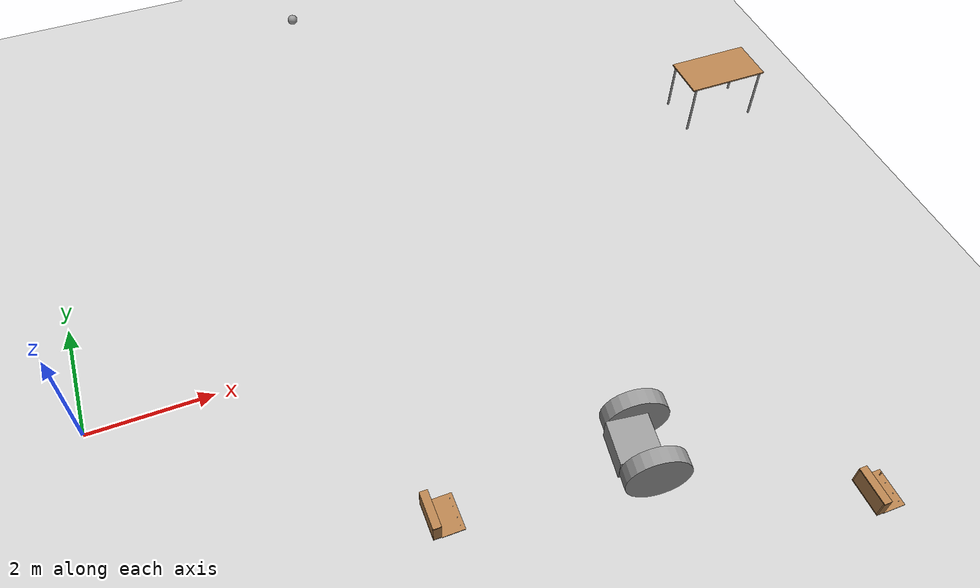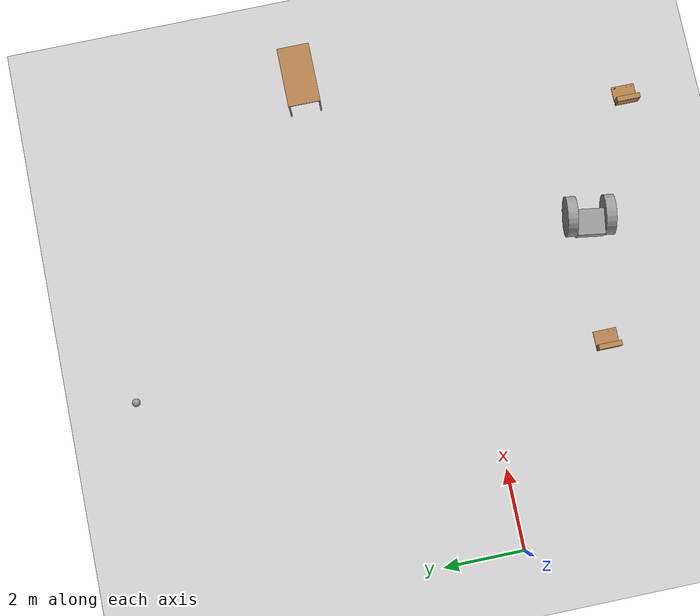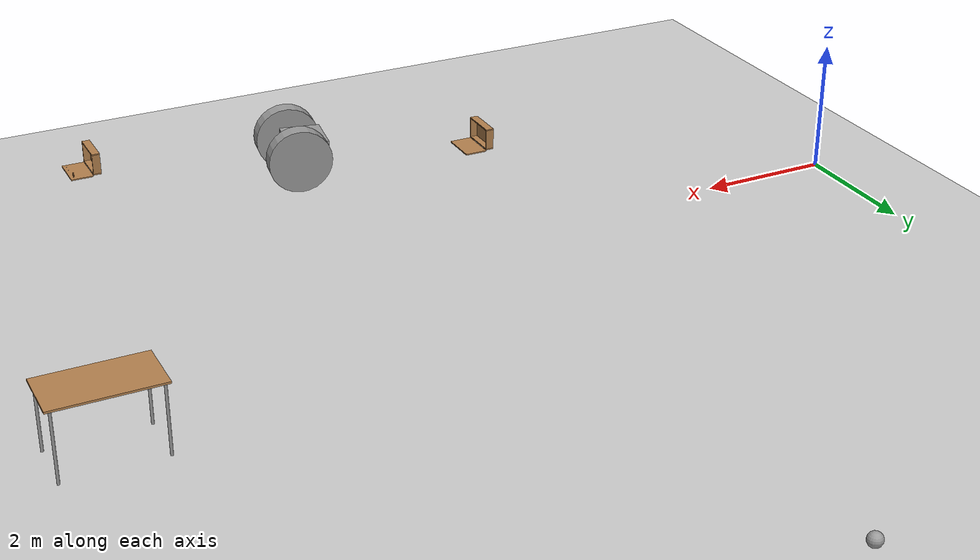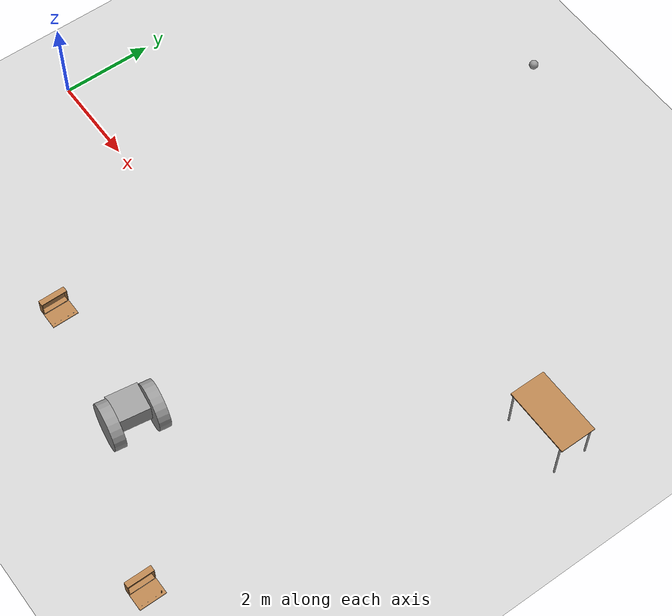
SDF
<sdf version="1.7">
 <world name="default">
  <model name="ground_plane">
   <static>1</static>
   <link name="link">
    <collision name="collision">
     <geometry><plane><normal>0 0 1</normal><size>100 100</size></plane></geometry>
     <surface>
      <contact><collide_bitmask>65535</collide_bitmask></contact>
      <friction><ode><mu>100</mu><mu2>50</mu2></ode></friction>
     </surface>
    </collision>
    <visual name="visual">
     <cast_shadows>0</cast_shadows>
     <geometry><plane><normal>0 0 1</normal><size>100 100</size></plane></geometry>
     <material>
      <script><uri>file://media/materials/scripts/gazebo.material</uri><name>Gazebo/Grey</name></script>
     </material>
    </visual>
   </link>
  </model>
  <model name="table">
   <static>1</static>
   <link name="link">
    <collision name="surface">
     <pose>0 0 1 0 -0 0</pose>
     <geometry><box><size>1.5 0.8 0.03</size></box></geometry>
     <surface><friction><ode><mu>0.6</mu><mu2>0.6</mu2></ode></friction></surface>
    </collision>
    <visual name="visual1">
     <pose>0 0 1 0 -0 0</pose>
     <geometry><box><size>1.5 0.8 0.03</size></box></geometry>
     <material>
      <script><uri>file://media/materials/scripts/gazebo.material</uri><name>Gazebo/Wood</name></script>
     </material>
    </visual>
    <collision name="front_left_leg">
     <pose>0.68 0.38 0.5 0 -0 0</pose>
     <geometry><cylinder><radius>0.02</radius><length>1</length></cylinder></geometry>
    </collision>
    <visual name="front_left_leg">
     <pose>0.68 0.38 0.5 0 -0 0</pose>
     <geometry><cylinder><radius>0.02</radius><length>1</length></cylinder></geometry>
     <material>
      <script><uri>file://media/materials/scripts/gazebo.material</uri><name>Gazebo/Grey</name></script>
     </material>
    </visual>
    <collision name="front_right_leg">
     <pose>0.68 -0.38 0.5 0 -0 0</pose>
     <geometry><cylinder><radius>0.02</radius><length>1</length></cylinder></geometry>
    </collision>
    <visual name="front_right_leg">
     <pose>0.68 -0.38 0.5 0 -0 0</pose>
     <geometry><cylinder><radius>0.02</radius><length>1</length></cylinder></geometry>
     <material>
      <script><uri>file://media/materials/scripts/gazebo.material</uri><name>Gazebo/Grey</name></script>
     </material>
    </visual>
    <collision name="back_right_leg">
     <pose>-0.68 -0.38 0.5 0 -0 0</pose>
     <geometry><cylinder><radius>0.02</radius><length>1</length></cylinder></geometry>
    </collision>
    <visual name="back_right_leg">
     <pose>-0.68 -0.38 0.5 0 -0 0</pose>
     <geometry><cylinder><radius>0.02</radius><length>1</length></cylinder></geometry>
     <material>
      <script><uri>file://media/materials/scripts/gazebo.material</uri><name>Gazebo/Grey</name></script>
     </material>
    </visual>
    <collision name="back_left_leg">
     <pose>-0.68 0.38 0.5 0 -0 0</pose>
     <geometry><cylinder><radius>0.02</radius><length>1</length></cylinder></geometry>
    </collision>
    <visual name="back_left_leg">
     <pose>-0.68 0.38 0.5 0 -0 0</pose>
     <geometry><cylinder><radius>0.02</radius><length>1</length></cylinder></geometry>
     <material>
      <script><uri>file://media/materials/scripts/gazebo.material</uri><name>Gazebo/Grey</name></script>
     </material>
    </visual>
   </link>
   <pose>12.4463 3.02945 0 0 -0 0</pose>
  </model>
  <model name="wooden_case">
   <link name="base">
    <pose>0 0 0.024 0 -0 0</pose>
    <inertial>
     <pose>-0.022184 0 0.171592 0 -0 0</pose>
     <mass>3.96264</mass>
     <inertia>
      <ixx>0.213536</ixx>
      <ixy>0</ixy>
      <ixz>0.000779377</ixz>
      <iyy>0.0708943</iyy>
      <iyz>0</iyz>
      <izz>0.154604</izz>
     </inertia>
    </inertial>
    <collision name="collision_back">
     <pose>-0.053975 0 0.1778 0 -0 0</pose>
     <geometry><box><size>0.01905 0.5461 0.3175</size></box></geometry>
     <surface>
      <contact>
       <poissons_ratio>0.347</poissons_ratio>
       <elastic_modulus>8.8e+09</elastic_modulus>
       <ode><kp>100000</kp><kd>100</kd><max_vel>100</max_vel><min_depth>0.001</min_depth></ode>
      </contact>
      <friction>
       <torsional>
        <coefficient>1</coefficient>
        <use_patch_radius>0</use_patch_radius>
        <surface_radius>0.01</surface_radius>
       </torsional>
      </friction>
     </surface>
    </collision>
    <visual name="visual_back">
     <pose>-0.053975 0 0.1778 0 -0 0</pose>
     <geometry><box><size>0.01905 0.5461 0.3175</size></box></geometry>
     <material>
      <script><uri>file://media/materials/scripts/gazebo.material</uri><name>Gazebo/Wood</name></script>
     </material>
    </visual>
    <collision name="collision_bottom">
     <pose>0 0 0.009525 0 -0 0</pose>
     <geometry><box><size>0.127 0.5842 0.01905</size></box></geometry>
     <surface>
      <contact>
       <poissons_ratio>0.347</poissons_ratio>
       <elastic_modulus>8.8e+09</elastic_modulus>
       <ode><kp>100000</kp><kd>100</kd><max_vel>100</max_vel><min_depth>0.001</min_depth></ode>
      </contact>
      <friction>
       <torsional>
        <coefficient>1</coefficient>
        <use_patch_radius>0</use_patch_radius>
        <surface_radius>0.01</surface_radius>
       </torsional>
      </friction>
     </surface>
    </collision>
    <visual name="visual_bottom">
     <pose>0 0 0.009525 0 -0 0</pose>
     <geometry><box><size>0.127 0.5842 0.01905</size></box></geometry>
     <material>
      <script><uri>file://media/materials/scripts/gazebo.material</uri><name>Gazebo/Wood</name></script>
     </material>
    </visual>
    <collision name="collision_top">
     <pose>0 0 0.346075 0 -0 0</pose>
     <geometry><box><size>0.127 0.5842 0.01905</size></box></geometry>
     <surface>
      <contact>
       <poissons_ratio>0.347</poissons_ratio>
       <elastic_modulus>8.8e+09</elastic_modulus>
       <ode><kp>100000</kp><kd>100</kd><max_vel>100</max_vel><min_depth>0.001</min_depth></ode>
      </contact>
      <friction>
       <torsional>
        <coefficient>1</coefficient>
        <use_patch_radius>0</use_patch_radius>
        <surface_radius>0.01</surface_radius>
       </torsional>
      </friction>
     </surface>
    </collision>
    <visual name="visual_top">
     <pose>0 0 0.346075 0 -0 0</pose>
     <geometry><box><size>0.127 0.5842 0.01905</size></box></geometry>
     <material>
      <script><uri>file://media/materials/scripts/gazebo.material</uri><name>Gazebo/Wood</name></script>
     </material>
    </visual>
    <collision name="collision_left">
     <pose>0 -0.282575 0.1778 0 -0 0</pose>
     <geometry><box><size>0.127 0.01905 0.3175</size></box></geometry>
     <surface>
      <contact>
       <poissons_ratio>0.347</poissons_ratio>
       <elastic_modulus>8.8e+09</elastic_modulus>
       <ode><kp>100000</kp><kd>100</kd><max_vel>100</max_vel><min_depth>0.001</min_depth></ode>
      </contact>
      <friction>
       <torsional>
        <coefficient>1</coefficient>
        <use_patch_radius>0</use_patch_radius>
        <surface_radius>0.01</surface_radius>
       </torsional>
      </friction>
     </surface>
    </collision>
    <visual name="visual_left">
     <pose>0 -0.282575 0.1778 0 -0 0</pose>
     <geometry><box><size>0.127 0.01905 0.3175</size></box></geometry>
     <material>
      <script><uri>file://media/materials/scripts/gazebo.material</uri><name>Gazebo/Wood</name></script>
     </material>
    </visual>
    <collision name="collision_right">
     <pose>0 0.282575 0.1778 0 -0 0</pose>
     <geometry><box><size>0.127 0.01905 0.3175</size></box></geometry>
     <surface>
      <contact>
       <poissons_ratio>0.347</poissons_ratio>
       <elastic_modulus>8.8e+09</elastic_modulus>
       <ode><kp>100000</kp><kd>100</kd><max_vel>100</max_vel><min_depth>0.001</min_depth></ode>
      </contact>
      <friction>
       <torsional>
        <coefficient>1</coefficient>
        <use_patch_radius>0</use_patch_radius>
        <surface_radius>0.01</surface_radius>
       </torsional>
      </friction>
     </surface>
    </collision>
    <visual name="visual_right">
     <pose>0 0.282575 0.1778 0 -0 0</pose>
     <geometry><box><size>0.127 0.01905 0.3175</size></box></geometry>
     <material>
      <script><uri>file://media/materials/scripts/gazebo.material</uri><name>Gazebo/Wood</name></script>
     </material>
    </visual>
    <collision name="collision_block_left">
     <pose>0.0095 -0.2151 -0.012 0 -0 0</pose>
     <geometry><box><size>0.108 0.05 0.024</size></box></geometry>
     <surface>
      <contact>
       <poissons_ratio>0.347</poissons_ratio>
       <elastic_modulus>8.8e+09</elastic_modulus>
       <ode><kp>100000</kp><kd>100</kd><max_vel>100</max_vel><min_depth>0.001</min_depth></ode>
      </contact>
      <friction>
       <torsional>
        <coefficient>1</coefficient>
        <use_patch_radius>0</use_patch_radius>
        <surface_radius>0.01</surface_radius>
       </torsional>
      </friction>
     </surface>
    </collision>
    <visual name="visual_block_left">
     <pose>0.0095 -0.2151 -0.012 0 -0 0</pose>
     <geometry><box><size>0.108 0.05 0.024</size></box></geometry>
     <material>
      <script><uri>file://media/materials/scripts/gazebo.material</uri><name>Gazebo/Wood</name></script>
     </material>
    </visual>
    <collision name="collision_block_right">
     <pose>0.0095 0.2151 -0.012 0 -0 0</pose>
     <geometry><box><size>0.108 0.05 0.024</size></box></geometry>
     <surface>
      <contact>
       <poissons_ratio>0.347</poissons_ratio>
       <elastic_modulus>8.8e+09</elastic_modulus>
       <ode><kp>100000</kp><kd>100</kd><max_vel>100</max_vel><min_depth>0.001</min_depth></ode>
      </contact>
      <friction>
       <torsional>
        <coefficient>1</coefficient>
        <use_patch_radius>0</use_patch_radius>
        <surface_radius>0.01</surface_radius>
       </torsional>
      </friction>
     </surface>
    </collision>
    <visual name="visual_block_right">
     <pose>0.0095 0.2151 -0.012 0 -0 0</pose>
     <geometry><box><size>0.108 0.05 0.024</size></box></geometry>
     <material>
      <script><uri>file://media/materials/scripts/gazebo.material</uri><name>Gazebo/Wood</name></script>
     </material>
    </visual>
   </link>
   <link name="lid">
    <pose>0.243775 0 0.009525 0 -0 0</pose>
    <inertial>
     <mass>1.97874</mass>
     <inertia>
      <ixx>0.0563367</ixx>
      <ixy>0</ixy>
      <ixz>0</ixz>
      <iyy>0.020911</iyy>
      <iyz>0</iyz>
      <izz>0.0771281</izz>
     </inertia>
    </inertial>
    <collision name="collision">
     <geometry><box><size>0.3556 0.5842 0.01905</size></box></geometry>
     <surface>
      <contact>
       <poissons_ratio>0.347</poissons_ratio>
       <elastic_modulus>8.8e+09</elastic_modulus>
       <ode><kp>100000</kp><kd>100</kd><max_vel>100</max_vel><min_depth>0.001</min_depth></ode>
      </contact>
      <friction>
       <torsional>
        <coefficient>1</coefficient>
        <use_patch_radius>0</use_patch_radius>
        <surface_radius>0.01</surface_radius>
       </torsional>
      </friction>
     </surface>
    </collision>
    <visual name="visual">
     <geometry><box><size>0.3556 0.5842 0.01905</size></box></geometry>
     <material>
      <script><uri>file://media/materials/scripts/gazebo.material</uri><name>Gazebo/Wood</name></script>
     </material>
    </visual>
    <visual name="tee_nut_1">
     <pose>0.122 -0.216 0 0 -0 0</pose>
     <geometry><cylinder><radius>0.00635</radius><length>0.0192405</length></cylinder></geometry>
     <material>
      <script><uri>file://media/materials/scripts/gazebo.material</uri><name>Gazebo/Grey</name></script>
     </material>
    </visual>
    <visual name="tee_nut_2">
     <pose>0.122 -0.088 0 0 -0 0</pose>
     <geometry><cylinder><radius>0.00635</radius><length>0.0192405</length></cylinder></geometry>
     <material>
      <script><uri>file://media/materials/scripts/gazebo.material</uri><name>Gazebo/Grey</name></script>
     </material>
    </visual>
    <visual name="tee_nut_3">
     <pose>0.122 0.088 0 0 -0 0</pose>
     <geometry><cylinder><radius>0.00635</radius><length>0.0192405</length></cylinder></geometry>
     <material>
      <script><uri>file://media/materials/scripts/gazebo.material</uri><name>Gazebo/Grey</name></script>
     </material>
    </visual>
    <visual name="tee_nut_4">
     <pose>0.122 0.216 0 0 -0 0</pose>
     <geometry><cylinder><radius>0.00635</radius><length>0.0192405</length></cylinder></geometry>
     <material>
      <script><uri>file://media/materials/scripts/gazebo.material</uri><name>Gazebo/Grey</name></script>
     </material>
    </visual>
   </link>
   <joint name="lid_hinge" type="revolute">
    <pose>-0.1778 0 0.01905 0 -0 0</pose>
    <parent>base</parent>
    <child>lid</child>
    <axis>
     <xyz>0 1 0</xyz>
     <limit><upper>0.523599</upper><lower>-1.5708</lower></limit>
     <dynamics><spring_reference>0</spring_reference><spring_stiffness>0</spring_stiffness></dynamics>
    </axis>
   </joint>
   <pose>4.4225 -3.09743 -0.001057 0 -0.000425 -1e-06</pose>
  </model>
  <model name="wooden_case_wooden_peg">
   <link name="wooden_case::base">
    <pose>0 0 0.024 0 -0 0</pose>
    <inertial>
     <pose>-0.022184 0 0.171592 0 -0 0</pose>
     <mass>3.96264</mass>
     <inertia>
      <ixx>0.213536</ixx>
      <ixy>0</ixy>
      <ixz>0.000779377</ixz>
      <iyy>0.0708943</iyy>
      <iyz>0</iyz>
      <izz>0.154604</izz>
     </inertia>
    </inertial>
    <collision name="collision_back">
     <pose>-0.053975 0 0.1778 0 -0 0</pose>
     <geometry><box><size>0.01905 0.5461 0.3175</size></box></geometry>
     <surface>
      <contact>
       <poissons_ratio>0.347</poissons_ratio>
       <elastic_modulus>8.8e+09</elastic_modulus>
       <ode><kp>100000</kp><kd>100</kd><max_vel>100</max_vel><min_depth>0.001</min_depth></ode>
      </contact>
      <friction>
       <torsional>
        <coefficient>1</coefficient>
        <use_patch_radius>0</use_patch_radius>
        <surface_radius>0.01</surface_radius>
       </torsional>
      </friction>
     </surface>
    </collision>
    <visual name="visual_back">
     <pose>-0.053975 0 0.1778 0 -0 0</pose>
     <geometry><box><size>0.01905 0.5461 0.3175</size></box></geometry>
     <material>
      <script><uri>file://media/materials/scripts/gazebo.material</uri><name>Gazebo/Wood</name></script>
     </material>
    </visual>
    <collision name="collision_bottom">
     <pose>0 0 0.009525 0 -0 0</pose>
     <geometry><box><size>0.127 0.5842 0.01905</size></box></geometry>
     <surface>
      <contact>
       <poissons_ratio>0.347</poissons_ratio>
       <elastic_modulus>8.8e+09</elastic_modulus>
       <ode><kp>100000</kp><kd>100</kd><max_vel>100</max_vel><min_depth>0.001</min_depth></ode>
      </contact>
      <friction>
       <torsional>
        <coefficient>1</coefficient>
        <use_patch_radius>0</use_patch_radius>
        <surface_radius>0.01</surface_radius>
       </torsional>
      </friction>
     </surface>
    </collision>
    <visual name="visual_bottom">
     <pose>0 0 0.009525 0 -0 0</pose>
     <geometry><box><size>0.127 0.5842 0.01905</size></box></geometry>
     <material>
      <script><uri>file://media/materials/scripts/gazebo.material</uri><name>Gazebo/Wood</name></script>
     </material>
    </visual>
    <collision name="collision_top">
     <pose>0 0 0.346075 0 -0 0</pose>
     <geometry><box><size>0.127 0.5842 0.01905</size></box></geometry>
     <surface>
      <contact>
       <poissons_ratio>0.347</poissons_ratio>
       <elastic_modulus>8.8e+09</elastic_modulus>
       <ode><kp>100000</kp><kd>100</kd><max_vel>100</max_vel><min_depth>0.001</min_depth></ode>
      </contact>
      <friction>
       <torsional>
        <coefficient>1</coefficient>
        <use_patch_radius>0</use_patch_radius>
        <surface_radius>0.01</surface_radius>
       </torsional>
      </friction>
     </surface>
    </collision>
    <visual name="visual_top">
     <pose>0 0 0.346075 0 -0 0</pose>
     <geometry><box><size>0.127 0.5842 0.01905</size></box></geometry>
     <material>
      <script><uri>file://media/materials/scripts/gazebo.material</uri><name>Gazebo/Wood</name></script>
     </material>
    </visual>
    <collision name="collision_left">
     <pose>0 -0.282575 0.1778 0 -0 0</pose>
     <geometry><box><size>0.127 0.01905 0.3175</size></box></geometry>
     <surface>
      <contact>
       <poissons_ratio>0.347</poissons_ratio>
       <elastic_modulus>8.8e+09</elastic_modulus>
       <ode><kp>100000</kp><kd>100</kd><max_vel>100</max_vel><min_depth>0.001</min_depth></ode>
      </contact>
      <friction>
       <torsional>
        <coefficient>1</coefficient>
        <use_patch_radius>0</use_patch_radius>
        <surface_radius>0.01</surface_radius>
       </torsional>
      </friction>
     </surface>
    </collision>
    <visual name="visual_left">
     <pose>0 -0.282575 0.1778 0 -0 0</pose>
     <geometry><box><size>0.127 0.01905 0.3175</size></box></geometry>
     <material>
      <script><uri>file://media/materials/scripts/gazebo.material</uri><name>Gazebo/Wood</name></script>
     </material>
    </visual>
    <collision name="collision_right">
     <pose>0 0.282575 0.1778 0 -0 0</pose>
     <geometry><box><size>0.127 0.01905 0.3175</size></box></geometry>
     <surface>
      <contact>
       <poissons_ratio>0.347</poissons_ratio>
       <elastic_modulus>8.8e+09</elastic_modulus>
       <ode><kp>100000</kp><kd>100</kd><max_vel>100</max_vel><min_depth>0.001</min_depth></ode>
      </contact>
      <friction>
       <torsional>
        <coefficient>1</coefficient>
        <use_patch_radius>0</use_patch_radius>
        <surface_radius>0.01</surface_radius>
       </torsional>
      </friction>
     </surface>
    </collision>
    <visual name="visual_right">
     <pose>0 0.282575 0.1778 0 -0 0</pose>
     <geometry><box><size>0.127 0.01905 0.3175</size></box></geometry>
     <material>
      <script><uri>file://media/materials/scripts/gazebo.material</uri><name>Gazebo/Wood</name></script>
     </material>
    </visual>
    <collision name="collision_block_left">
     <pose>0.0095 -0.2151 -0.012 0 -0 0</pose>
     <geometry><box><size>0.108 0.05 0.024</size></box></geometry>
     <surface>
      <contact>
       <poissons_ratio>0.347</poissons_ratio>
       <elastic_modulus>8.8e+09</elastic_modulus>
       <ode><kp>100000</kp><kd>100</kd><max_vel>100</max_vel><min_depth>0.001</min_depth></ode>
      </contact>
      <friction>
       <torsional>
        <coefficient>1</coefficient>
        <use_patch_radius>0</use_patch_radius>
        <surface_radius>0.01</surface_radius>
       </torsional>
      </friction>
     </surface>
    </collision>
    <visual name="visual_block_left">
     <pose>0.0095 -0.2151 -0.012 0 -0 0</pose>
     <geometry><box><size>0.108 0.05 0.024</size></box></geometry>
     <material>
      <script><uri>file://media/materials/scripts/gazebo.material</uri><name>Gazebo/Wood</name></script>
     </material>
    </visual>
    <collision name="collision_block_right">
     <pose>0.0095 0.2151 -0.012 0 -0 0</pose>
     <geometry><box><size>0.108 0.05 0.024</size></box></geometry>
     <surface>
      <contact>
       <poissons_ratio>0.347</poissons_ratio>
       <elastic_modulus>8.8e+09</elastic_modulus>
       <ode><kp>100000</kp><kd>100</kd><max_vel>100</max_vel><min_depth>0.001</min_depth></ode>
      </contact>
      <friction>
       <torsional>
        <coefficient>1</coefficient>
        <use_patch_radius>0</use_patch_radius>
        <surface_radius>0.01</surface_radius>
       </torsional>
      </friction>
     </surface>
    </collision>
    <visual name="visual_block_right">
     <pose>0.0095 0.2151 -0.012 0 -0 0</pose>
     <geometry><box><size>0.108 0.05 0.024</size></box></geometry>
     <material>
      <script><uri>file://media/materials/scripts/gazebo.material</uri><name>Gazebo/Wood</name></script>
     </material>
    </visual>
   </link>
   <link name="wooden_case::lid">
    <pose>0.243775 0 0.009525 0 -0 0</pose>
    <inertial>
     <mass>1.97874</mass>
     <inertia>
      <ixx>0.0563367</ixx>
      <ixy>0</ixy>
      <ixz>0</ixz>
      <iyy>0.020911</iyy>
      <iyz>0</iyz>
      <izz>0.0771281</izz>
     </inertia>
    </inertial>
    <collision name="collision">
     <geometry><box><size>0.3556 0.5842 0.01905</size></box></geometry>
     <surface>
      <contact>
       <poissons_ratio>0.347</poissons_ratio>
       <elastic_modulus>8.8e+09</elastic_modulus>
       <ode><kp>100000</kp><kd>100</kd><max_vel>100</max_vel><min_depth>0.001</min_depth></ode>
      </contact>
      <friction>
       <torsional>
        <coefficient>1</coefficient>
        <use_patch_radius>0</use_patch_radius>
        <surface_radius>0.01</surface_radius>
       </torsional>
      </friction>
     </surface>
    </collision>
    <visual name="visual">
     <geometry><box><size>0.3556 0.5842 0.01905</size></box></geometry>
     <material>
      <script><uri>file://media/materials/scripts/gazebo.material</uri><name>Gazebo/Wood</name></script>
     </material>
    </visual>
    <visual name="tee_nut_1">
     <pose>0.122 -0.216 0 0 -0 0</pose>
     <geometry><cylinder><radius>0.00635</radius><length>0.0192405</length></cylinder></geometry>
     <material>
      <script><uri>file://media/materials/scripts/gazebo.material</uri><name>Gazebo/Grey</name></script>
     </material>
    </visual>
    <visual name="tee_nut_2">
     <pose>0.122 -0.088 0 0 -0 0</pose>
     <geometry><cylinder><radius>0.00635</radius><length>0.0192405</length></cylinder></geometry>
     <material>
      <script><uri>file://media/materials/scripts/gazebo.material</uri><name>Gazebo/Grey</name></script>
     </material>
    </visual>
    <visual name="tee_nut_3">
     <pose>0.122 0.088 0 0 -0 0</pose>
     <geometry><cylinder><radius>0.00635</radius><length>0.0192405</length></cylinder></geometry>
     <material>
      <script><uri>file://media/materials/scripts/gazebo.material</uri><name>Gazebo/Grey</name></script>
     </material>
    </visual>
    <visual name="tee_nut_4">
     <pose>0.122 0.216 0 0 -0 0</pose>
     <geometry><cylinder><radius>0.00635</radius><length>0.0192405</length></cylinder></geometry>
     <material>
      <script><uri>file://media/materials/scripts/gazebo.material</uri><name>Gazebo/Grey</name></script>
     </material>
    </visual>
   </link>
   <joint name="wooden_case::lid_hinge" type="revolute">
    <pose>-0.1778 0 0.01905 0 -0 0</pose>
    <parent>wooden_case::base</parent>
    <child>wooden_case::lid</child>
    <axis>
     <xyz>0 1 0</xyz>
     <limit><upper>0.523599</upper><lower>-1.5708</lower></limit>
     <dynamics><spring_reference>0</spring_reference><spring_stiffness>0</spring_stiffness></dynamics>
    </axis>
   </joint>
   <link name="peg::link">
    <pose>0.365774 0.216 0.05905 0 -0 0</pose>
    <inertial>
     <mass>0.0175</mass>
     <inertia>
      <ixx>9.74923e-06</ixx>
      <ixy>0</ixy>
      <ixz>0</ixz>
      <iyy>9.74923e-06</iyy>
      <iyz>0</iyz>
      <izz>8.31797e-07</izz>
     </inertia>
    </inertial>
    <collision name="collision">
     <geometry><cylinder><radius>0.00975</radius><length>0.08</length></cylinder></geometry>
     <surface>
      <contact>
       <poissons_ratio>0.347</poissons_ratio>
       <elastic_modulus>8.8e+09</elastic_modulus>
       <ode><kp>100000</kp><kd>100</kd><max_vel>100</max_vel><min_depth>0.001</min_depth></ode>
      </contact>
      <friction>
       <torsional>
        <coefficient>1</coefficient>
        <use_patch_radius>0</use_patch_radius>
        <surface_radius>0.01</surface_radius>
       </torsional>
      </friction>
     </surface>
    </collision>
    <visual name="visual">
     <geometry><cylinder><radius>0.00975</radius><length>0.08</length></cylinder></geometry>
     <material>
      <script><uri>file://media/materials/scripts/gazebo.material</uri><name>Gazebo/Wood</name></script>
     </material>
    </visual>
   </link>
   <joint name="case_peg" type="revolute">
    <child>peg::link</child>
    <parent>wooden_case::lid</parent>
    <axis>
     <xyz>0 0 1</xyz>
     <limit><upper>0</upper><lower>0</lower></limit>
     <dynamics><spring_reference>0</spring_reference><spring_stiffness>0</spring_stiffness></dynamics>
    </axis>
   </joint>
   <pose>10.4077 -4.96122 -0.001057 -1e-06 -0.000435 -2e-06</pose>
  </model>
  <model name="bigwheel_0_clone">
   <link name="link_0">
    <pose>-0.059968 0.467368 0 0 -0 0</pose>
    <inertial>
     <mass>1</mass>
     <inertia><ixx>0.145833</ixx><ixy>0</ixy><ixz>0</ixz><iyy>0.145833</iyy><iyz>0</iyz><izz>0.125</izz></inertia>
     <pose>0 0 0.5 1.5707 -0 0</pose>
    </inertial>
    <visual name="visual">
     <pose>0 0 0 1.5707 -0 0</pose>
     <geometry><cylinder><radius>0.5</radius><length>0.25</length></cylinder></geometry>
     <material>
      <lighting>1</lighting>
      <script><uri>file://media/materials/scripts/gazebo.material</uri><name>Gazebo/Grey</name></script>
      <shader type="pixel"><normal_map>__default__</normal_map></shader>
      <ambient>0.3 0.3 0.3 1</ambient>
      <diffuse>0.7 0.7 0.7 1</diffuse>
      <specular>0.01 0.01 0.01 1</specular>
      <emissive>0 0 0 1</emissive>
     </material>
    </visual>
    <collision name="collision">
     <pose>0 0 0 1.5707 -0 0</pose>
     <geometry><cylinder><radius>0.5</radius><length>0.25</length></cylinder></geometry>
     <surface>
      <friction>
       <ode><mu>1</mu><mu2>1</mu2><fdir1>0 0 0</fdir1><slip1>0</slip1><slip2>0</slip2></ode>
       <torsional>
        <coefficient>1</coefficient>
        <patch_radius>0</patch_radius>
        <surface_radius>0</surface_radius>
        <use_patch_radius>1</use_patch_radius>
        <ode><slip>0</slip></ode>
       </torsional>
      </friction>
      <bounce><restitution_coefficient>0</restitution_coefficient><threshold>1e+06</threshold></bounce>
      <contact>
       <collide_without_contact>0</collide_without_contact>
       <collide_without_contact_bitmask>1</collide_without_contact_bitmask>
       <collide_bitmask>1</collide_bitmask>
       <ode>
        <soft_cfm>0</soft_cfm>
        <soft_erp>0.2</soft_erp>
        <kp>1e+13</kp>
        <kd>1</kd>
        <max_vel>0.01</max_vel>
        <min_depth>0</min_depth>
       </ode>
       <bullet>
        <split_impulse>1</split_impulse>
        <split_impulse_penetration_threshold>-0.01</split_impulse_penetration_threshold>
        <soft_cfm>0</soft_cfm>
        <soft_erp>0.2</soft_erp>
        <kp>1e+13</kp>
        <kd>1</kd>
       </bullet>
      </contact>
     </surface>
    </collision>
   </link>
   <link name="link_0_clone">
    <pose>-0.059968 -0.467369 0 0 -0 0</pose>
    <inertial>
     <mass>1</mass>
     <inertia><ixx>0.145833</ixx><ixy>0</ixy><ixz>0</ixz><iyy>0.145833</iyy><iyz>0</iyz><izz>0.125</izz></inertia>
     <pose>0 0 0.5 1.5707 -0 0</pose>
    </inertial>
    <visual name="visual">
     <pose>0 0 0 1.5707 -0 0</pose>
     <geometry><cylinder><radius>0.5</radius><length>0.25</length></cylinder></geometry>
     <material>
      <lighting>1</lighting>
      <script><uri>file://media/materials/scripts/gazebo.material</uri><name>Gazebo/Grey</name></script>
      <shader type="pixel"><normal_map>__default__</normal_map></shader>
      <ambient>0.3 0.3 0.3 1</ambient>
      <diffuse>0.7 0.7 0.7 1</diffuse>
      <specular>0.01 0.01 0.01 1</specular>
      <emissive>0 0 0 1</emissive>
     </material>
    </visual>
    <collision name="collision">
     <pose>0 0 0 1.5707 -0 0</pose>
     <geometry><cylinder><radius>0.5</radius><length>0.25</length></cylinder></geometry>
     <surface>
      <friction>
       <ode><mu>1</mu><mu2>1</mu2><fdir1>0 0 0</fdir1><slip1>0</slip1><slip2>0</slip2></ode>
       <torsional>
        <coefficient>1</coefficient>
        <patch_radius>0</patch_radius>
        <surface_radius>0</surface_radius>
        <use_patch_radius>1</use_patch_radius>
        <ode><slip>0</slip></ode>
       </torsional>
      </friction>
      <bounce><restitution_coefficient>0</restitution_coefficient><threshold>1e+06</threshold></bounce>
      <contact>
       <collide_without_contact>0</collide_without_contact>
       <collide_without_contact_bitmask>1</collide_without_contact_bitmask>
       <collide_bitmask>1</collide_bitmask>
       <ode>
        <soft_cfm>0</soft_cfm>
        <soft_erp>0.2</soft_erp>
        <kp>1e+13</kp>
        <kd>1</kd>
        <max_vel>0.01</max_vel>
        <min_depth>0</min_depth>
       </ode>
       <bullet>
        <split_impulse>1</split_impulse>
        <split_impulse_penetration_threshold>-0.01</split_impulse_penetration_threshold>
        <soft_cfm>0</soft_cfm>
        <soft_erp>0.2</soft_erp>
        <kp>1e+13</kp>
        <kd>1</kd>
       </bullet>
      </contact>
     </surface>
    </collision>
   </link>
   <link name="link_1">
    <pose>0.119938 0 0 0 -0 0</pose>
    <inertial>
     <mass>0.17574</mass>
     <inertia>
      <ixx>0.00921905</ixx>
      <ixy>0</ixy>
      <ixz>0</ixz>
      <iyy>0.00835657</iyy>
      <iyz>0</iyz>
      <izz>0.0128667</izz>
     </inertia>
    </inertial>
    <visual name="visual">
     <geometry><box><size>0.640188 0.684641 0.400961</size></box></geometry>
     <material>
      <lighting>1</lighting>
      <script><uri>file://media/materials/scripts/gazebo.material</uri><name>Gazebo/Grey</name></script>
      <shader type="pixel"/>
      <ambient>0.3 0.3 0.3 1</ambient>
      <diffuse>0.7 0.7 0.7 1</diffuse>
      <specular>0.01 0.01 0.01 1</specular>
      <emissive>0 0 0 1</emissive>
     </material>
    </visual>
    <collision name="collision">
     <geometry><box><size>0.640188 0.684641 0.400961</size></box></geometry>
     <surface>
      <friction>
       <ode><mu>1</mu><mu2>1</mu2><fdir1>0 0 0</fdir1><slip1>0</slip1><slip2>0</slip2></ode>
       <torsional>
        <coefficient>1</coefficient>
        <patch_radius>0</patch_radius>
        <surface_radius>0</surface_radius>
        <use_patch_radius>1</use_patch_radius>
        <ode><slip>0</slip></ode>
       </torsional>
      </friction>
      <bounce><restitution_coefficient>0</restitution_coefficient><threshold>1e+06</threshold></bounce>
      <contact>
       <collide_without_contact>0</collide_without_contact>
       <collide_without_contact_bitmask>1</collide_without_contact_bitmask>
       <collide_bitmask>1</collide_bitmask>
       <ode>
        <soft_cfm>0</soft_cfm>
        <soft_erp>0.2</soft_erp>
        <kp>1e+13</kp>
        <kd>1</kd>
        <max_vel>0.01</max_vel>
        <min_depth>0</min_depth>
       </ode>
       <bullet>
        <split_impulse>1</split_impulse>
        <split_impulse_penetration_threshold>-0.01</split_impulse_penetration_threshold>
        <soft_cfm>0</soft_cfm>
        <soft_erp>0.2</soft_erp>
        <kp>1e+13</kp>
        <kd>1</kd>
       </bullet>
      </contact>
     </surface>
    </collision>
   </link>
   <joint name="link_1_JOINT_0" type="revolute">
    <parent>link_1</parent>
    <child>link_0</child>
    <axis>
     <xyz>0 0 1</xyz>
     <limit>
      <lower>-1.79769e+308</lower>
      <upper>1.79769e+308</upper>
      <effort>-1</effort>
      <velocity>-1</velocity>
     </limit>
     <dynamics>
      <spring_reference>0</spring_reference>
      <spring_stiffness>0</spring_stiffness>
      <damping>0</damping>
     </dynamics>
    </axis>
    <physics>
     <ode><limit><cfm>0</cfm><erp>0.2</erp></limit><suspension><cfm>0</cfm><erp>0.2</erp></suspension></ode>
    </physics>
   </joint>
   <joint name="link_1_JOINT_1" type="revolute">
    <parent>link_1</parent>
    <child>link_0_clone</child>
    <axis>
     <xyz>0 0 1</xyz>
     <limit>
      <lower>-1.79769e+308</lower>
      <upper>1.79769e+308</upper>
      <effort>-1</effort>
      <velocity>-1</velocity>
     </limit>
     <dynamics>
      <spring_reference>0</spring_reference>
      <spring_stiffness>0</spring_stiffness>
      <damping>0</damping>
     </dynamics>
    </axis>
    <physics>
     <ode><limit><cfm>0</cfm><erp>0.2</erp></limit><suspension><cfm>0</cfm><erp>0.2</erp></suspension></ode>
    </physics>
   </joint>
   <static>0</static>
   <pose>7.57535 -3.27462 0.498146 -3.14149 0.031549 2.99545</pose>
  </model>
  <model name="my_ball">
   <link name="link_0">
    <inertial>
     <mass>1</mass>
     <inertia><ixx>0.1</ixx><ixy>0</ixy><ixz>0</ixz><iyy>0.1</iyy><iyz>0</iyz><izz>0.1</izz></inertia>
    </inertial>
    <visual name="visual">
     <geometry><sphere><radius>0.1</radius></sphere></geometry>
     <material>
      <lighting>1</lighting>
      <script><uri>file://media/materials/scripts/gazebo.material</uri><name>Gazebo/Grey</name></script>
      <shader type="pixel"><normal_map>__default__</normal_map></shader>
      <ambient>1 1 1 1</ambient>
      <diffuse>1 1 1 1</diffuse>
      <specular>1 1 1 1</specular>
      <emissive>1 1 1 1</emissive>
     </material>
    </visual>
    <collision name="collision">
     <geometry><sphere><radius>0.1</radius></sphere></geometry>
     <surface>
      <friction>
       <ode><mu>1</mu><mu2>1</mu2><fdir1>0 0 0</fdir1><slip1>0</slip1><slip2>0</slip2></ode>
       <torsional>
        <coefficient>1</coefficient>
        <patch_radius>0</patch_radius>
        <surface_radius>0</surface_radius>
        <use_patch_radius>1</use_patch_radius>
        <ode><slip>0</slip></ode>
       </torsional>
      </friction>
      <bounce><restitution_coefficient>0</restitution_coefficient><threshold>1e+06</threshold></bounce>
      <contact>
       <collide_without_contact>0</collide_without_contact>
       <collide_without_contact_bitmask>1</collide_without_contact_bitmask>
       <collide_bitmask>1</collide_bitmask>
       <ode>
        <soft_cfm>0</soft_cfm>
        <soft_erp>0.2</soft_erp>
        <kp>1e+13</kp>
        <kd>1</kd>
        <max_vel>0.01</max_vel>
        <min_depth>0</min_depth>
       </ode>
       <bullet>
        <split_impulse>1</split_impulse>
        <split_impulse_penetration_threshold>-0.01</split_impulse_penetration_threshold>
        <soft_cfm>0</soft_cfm>
        <soft_erp>0.2</soft_erp>
        <kp>1e+13</kp>
        <kd>1</kd>
       </bullet>
      </contact>
     </surface>
    </collision>
   </link>
   <static>0</static>
   <pose>5.42272 8.53176 0.1 0 -0 0</pose>
  </model>
 </world>
</sdf>
